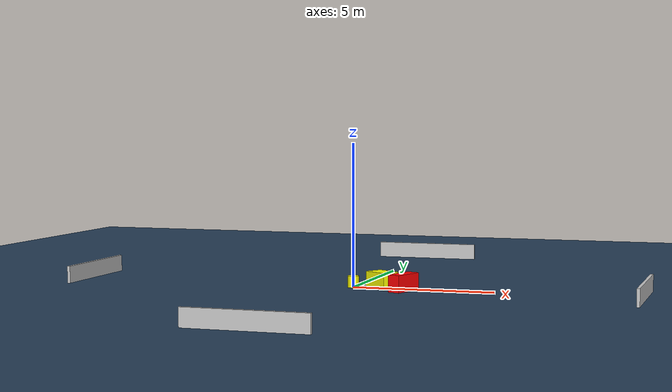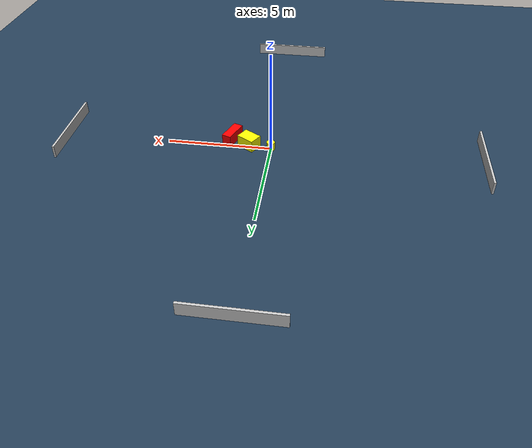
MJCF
<?xml version="1.0" ?>
<mujoco model="generated_environment">
  <option timestep="0.01" integrator="RK4" cone="elliptic"/>
  <default>
    <geom density="1"/>
  </default>
  <asset>
    <texture builtin="gradient" height="3072" name="skybox" rgb1="0.3 0.5 0.7" rgb2="0 0 0" type="skybox" width="512"/>
    <texture builtin="checker" height="300" name="groundplane" rgb1="0.2 0.3 0.4" rgb2="0.1 0.2 0.3" type="2d" width="300"/>
    <material name="groundplane" reflectance="0.2" texrepeat="5 5" texture="groundplane"/>
  </asset>
  <worldbody>
    <light dir="0 0 -1" directional="true" pos="0 0 1.5"/>
    <geom condim="3" friction="0.5 0.005 0.001" material="groundplane" name="floor" pos="0 0 0" size="0 0 0.05" type="plane"/>
    <body name="walls">
      <geom name="wall_1" condim="4" pos="-10.0 0.0 0.3" rgba="0.800000011920929 0.800000011920929 0.800000011920929 1.0" size="0.05 2.0 0.3" type="box"/>
      <geom name="wall_2" condim="4" pos="10.0 0.0 0.3" rgba="0.800000011920929 0.800000011920929 0.800000011920929 1.0" size="0.05 2.0 0.3" type="box"/>
      <geom name="wall_3" condim="4" pos="0.0 -10.0 0.3" rgba="0.800000011920929 0.800000011920929 0.800000011920929 1.0" size="2.0 0.05 0.3" type="box"/>
      <geom name="wall_4" condim="4" pos="0.0 10.0 0.3" rgba="0.800000011920929 0.800000011920929 0.800000011920929 1.0" size="2.0 0.05 0.3" type="box"/>
    </body>
    <body name="robot">
      <joint name="joint_x" type="slide" pos="0 0 0" axis="1 0 0"/>
      <joint name="joint_y" type="slide" pos="0 0 0" axis="0 1 0"/>
      <geom name="robot" type="cylinder" pos="0.0 0.0 0.2" size="0.2 0.2 0.0" mass="5.0" friction="1.0 0.005 0.0001" condim="4" rgba="1.0 1.0 0.0 1.0"/>
    </body>
    <body name="obstacle_1_movable">
      <geom name="obstacle_1_movable" condim="4" pos="1.0713956875244959 -0.10237599858176957 0.3" euler="0 0 328.7908856599281" friction="0.0 0.005 0.001" rgba="1.0 1.0 0.0 1.0" size="0.44830601050260355 0.32643600662937255 0.3" type="box" mass="0.1"/>
      <joint type="free"/>
    </body>
    <body name="obstacle_2_static">
      <geom name="obstacle_2_static" condim="4" pos="1.942085291482926 -0.464596135950012 0.3" euler="0 0 159.19763036303522" friction="0.0 0.005 0.001" rgba="1.0 0.0 0.0 1.0" size="0.22296942343827397 0.5723007021970573 0.3" type="box"/>
    </body>
  </worldbody>
  <actuator>
    <motor name="actuator_x" joint="joint_x" gear="1" ctrlrange="-1 1"/>
    <motor name="actuator_y" joint="joint_y" gear="1" ctrlrange="-1 1"/>
  </actuator>
</mujoco>
